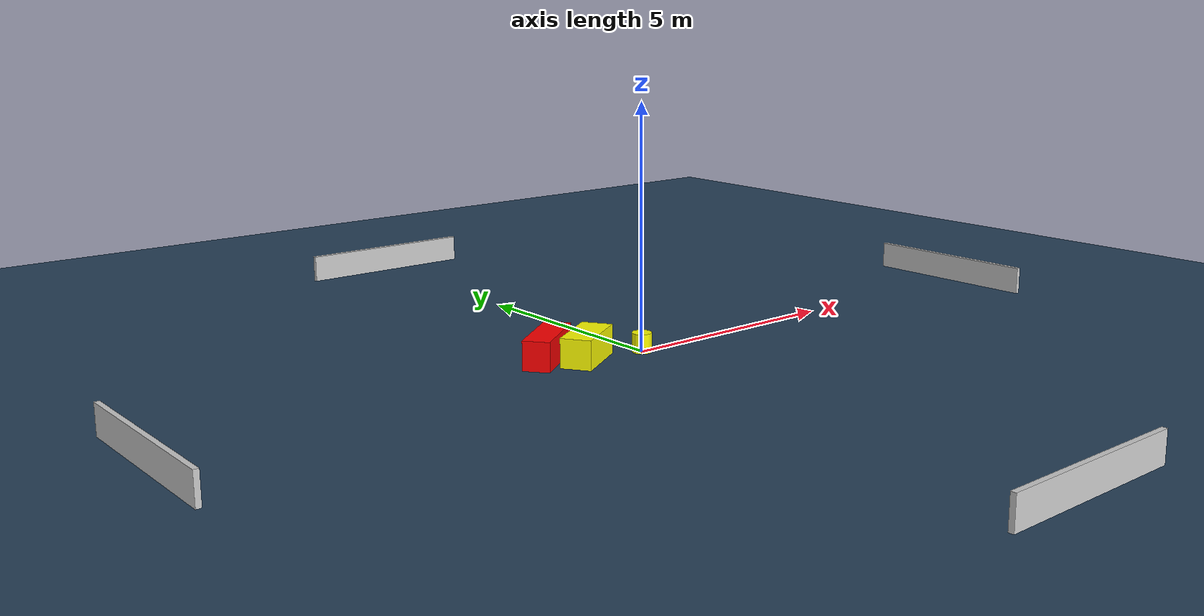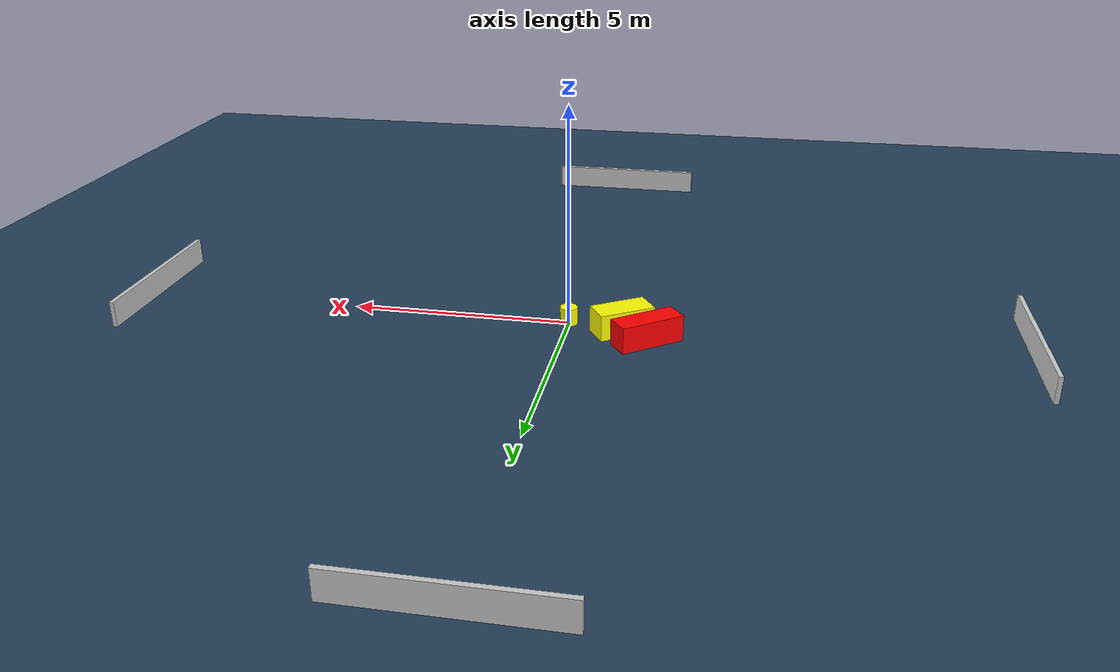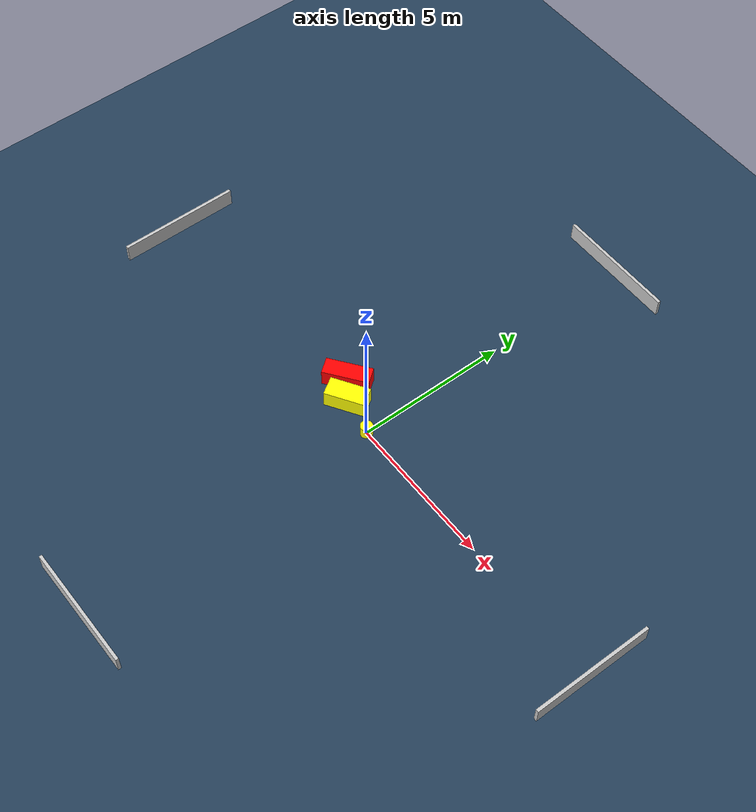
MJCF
<?xml version="1.0" ?>
<mujoco model="generated_environment">
  <option timestep="0.01" integrator="RK4" cone="elliptic"/>
  <default>
    <geom density="1"/>
  </default>
  <asset>
    <texture builtin="gradient" height="3072" name="skybox" rgb1="0.3 0.5 0.7" rgb2="0 0 0" type="skybox" width="512"/>
    <texture builtin="checker" height="300" name="groundplane" rgb1="0.2 0.3 0.4" rgb2="0.1 0.2 0.3" type="2d" width="300"/>
    <material name="groundplane" reflectance="0.2" texrepeat="5 5" texture="groundplane"/>
  </asset>
  <worldbody>
    <light dir="0 0 -1" directional="true" pos="0 0 1.5"/>
    <geom condim="3" friction="0.5 0.005 0.001" material="groundplane" name="floor" pos="0 0 0" size="0 0 0.05" type="plane"/>
    <body name="walls">
      <geom name="wall_1" condim="4" pos="-10.0 0.0 0.3" rgba="0.800000011920929 0.800000011920929 0.800000011920929 1.0" size="0.05 2.0 0.3" type="box"/>
      <geom name="wall_2" condim="4" pos="10.0 0.0 0.3" rgba="0.800000011920929 0.800000011920929 0.800000011920929 1.0" size="0.05 2.0 0.3" type="box"/>
      <geom name="wall_3" condim="4" pos="0.0 -10.0 0.3" rgba="0.800000011920929 0.800000011920929 0.800000011920929 1.0" size="2.0 0.05 0.3" type="box"/>
      <geom name="wall_4" condim="4" pos="0.0 10.0 0.3" rgba="0.800000011920929 0.800000011920929 0.800000011920929 1.0" size="2.0 0.05 0.3" type="box"/>
    </body>
    <body name="robot">
      <joint name="joint_x" type="slide" pos="0 0 0" axis="1 0 0"/>
      <joint name="joint_y" type="slide" pos="0 0 0" axis="0 1 0"/>
      <geom name="robot" type="cylinder" pos="0.0 0.0 0.2" size="0.2 0.2 0.0" mass="5.0" friction="1.0 0.005 0.0001" condim="4" rgba="1.0 1.0 0.0 1.0"/>
    </body>
    <body name="obstacle_1_movable">
      <geom name="obstacle_1_movable" condim="4" pos="-1.2367279640390518 0.21718391940544715 0.3" euler="0 0 122.46803796657927" friction="0.0 0.005 0.001" rgba="1.0 1.0 0.0 1.0" size="0.31549439433880555 0.6473436271307255 0.3" type="box" mass="0.1"/>
      <joint type="free"/>
    </body>
    <body name="obstacle_2_static">
      <geom name="obstacle_2_static" condim="4" pos="-1.8433140298356396 0.6884930676266613 0.3" euler="0 0 126.87527101604478" friction="0.0 0.005 0.001" rgba="1.0 0.0 0.0 1.0" size="0.27652761290842093 0.7520382991094623 0.3" type="box"/>
    </body>
  </worldbody>
  <actuator>
    <motor name="actuator_x" joint="joint_x" gear="1" ctrlrange="-1 1"/>
    <motor name="actuator_y" joint="joint_y" gear="1" ctrlrange="-1 1"/>
  </actuator>
</mujoco>
